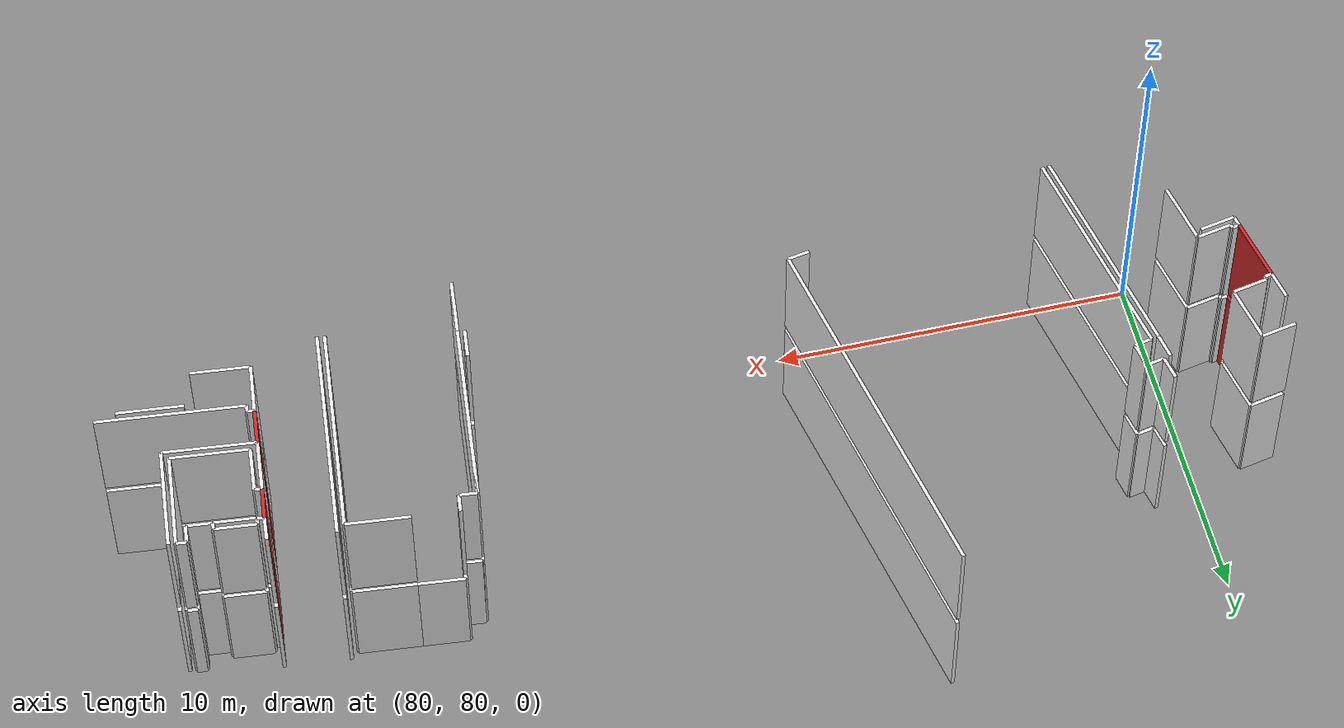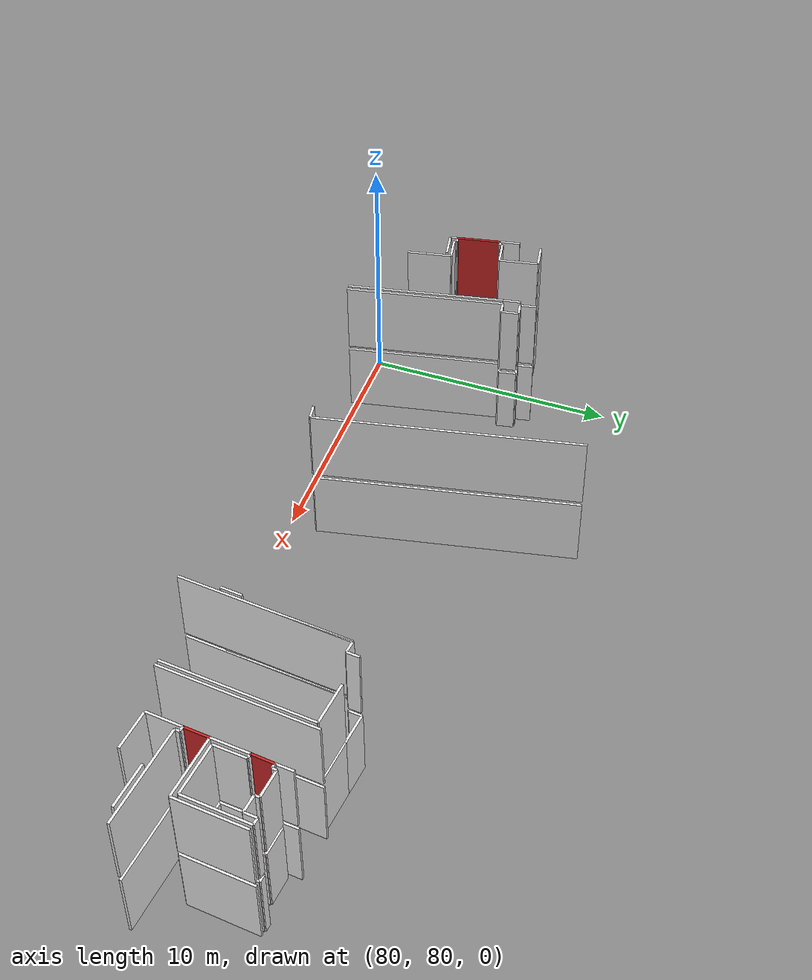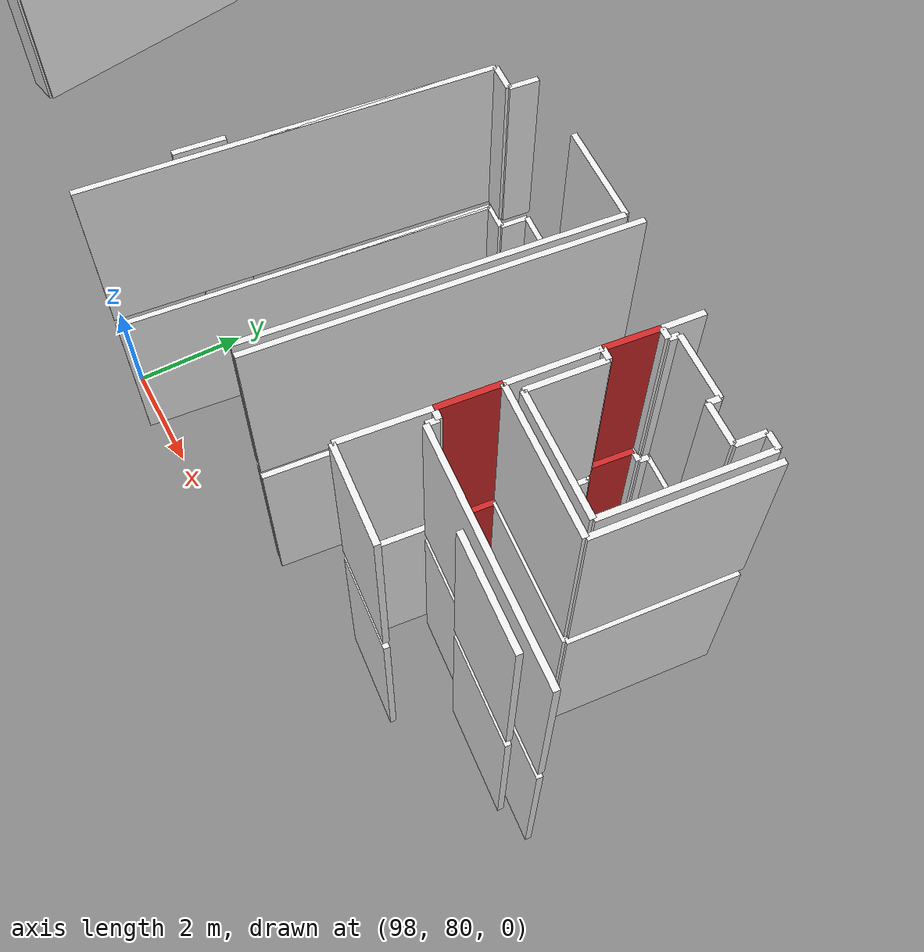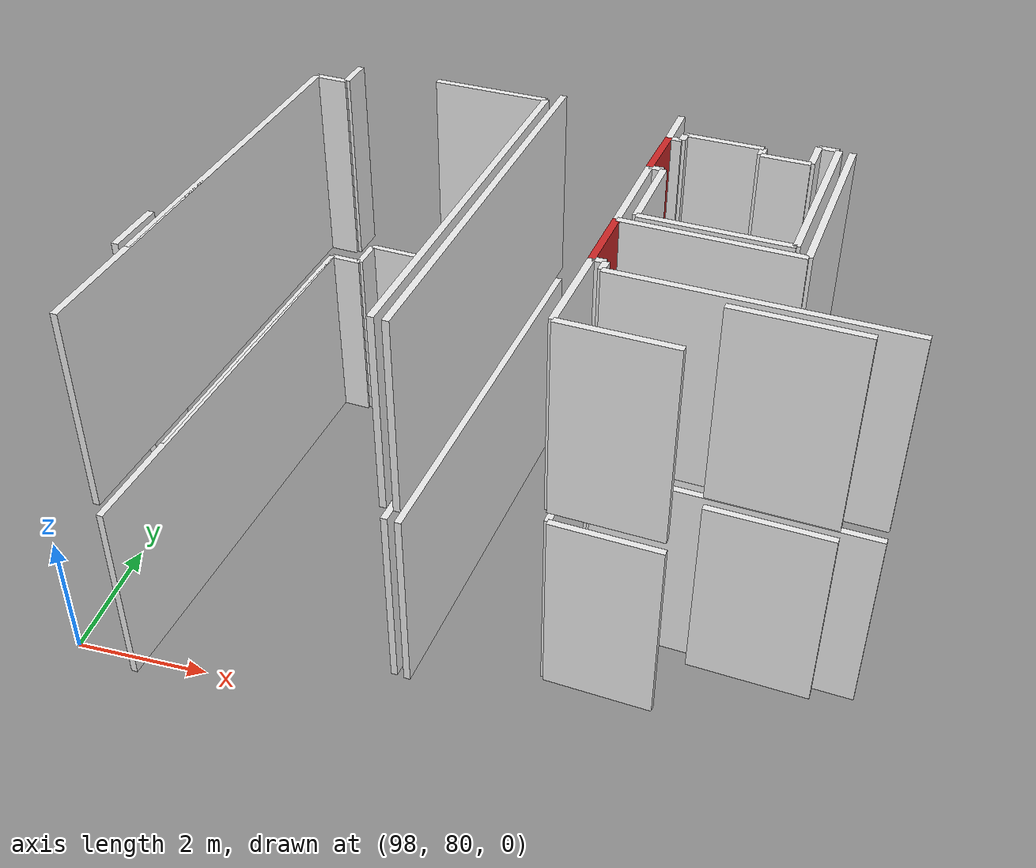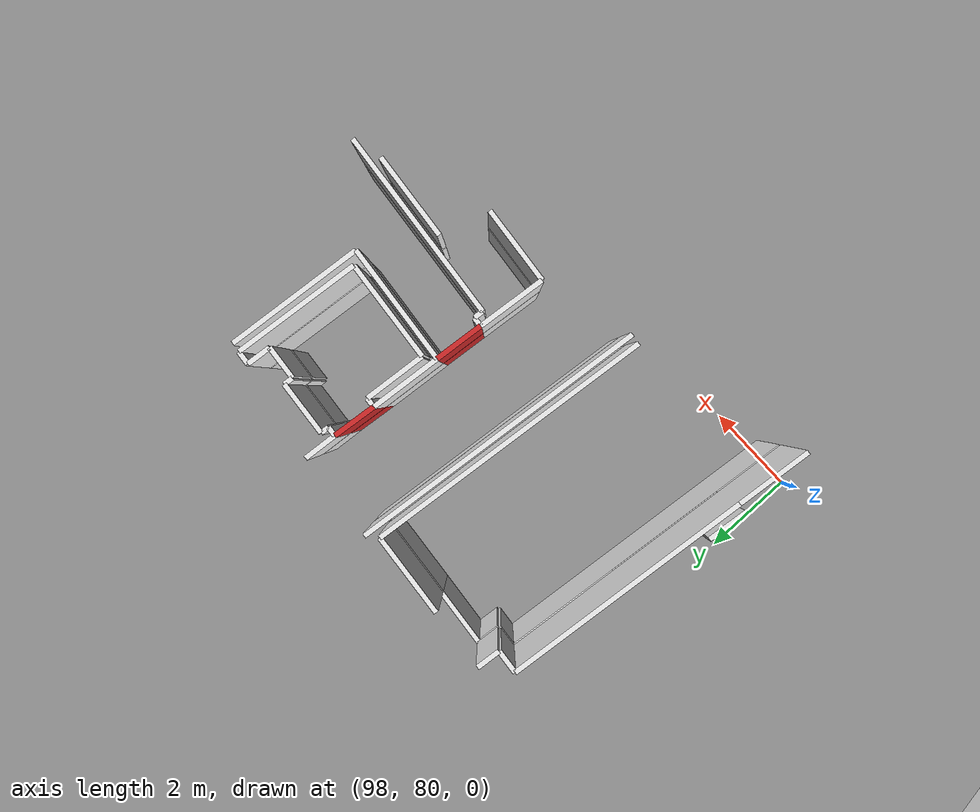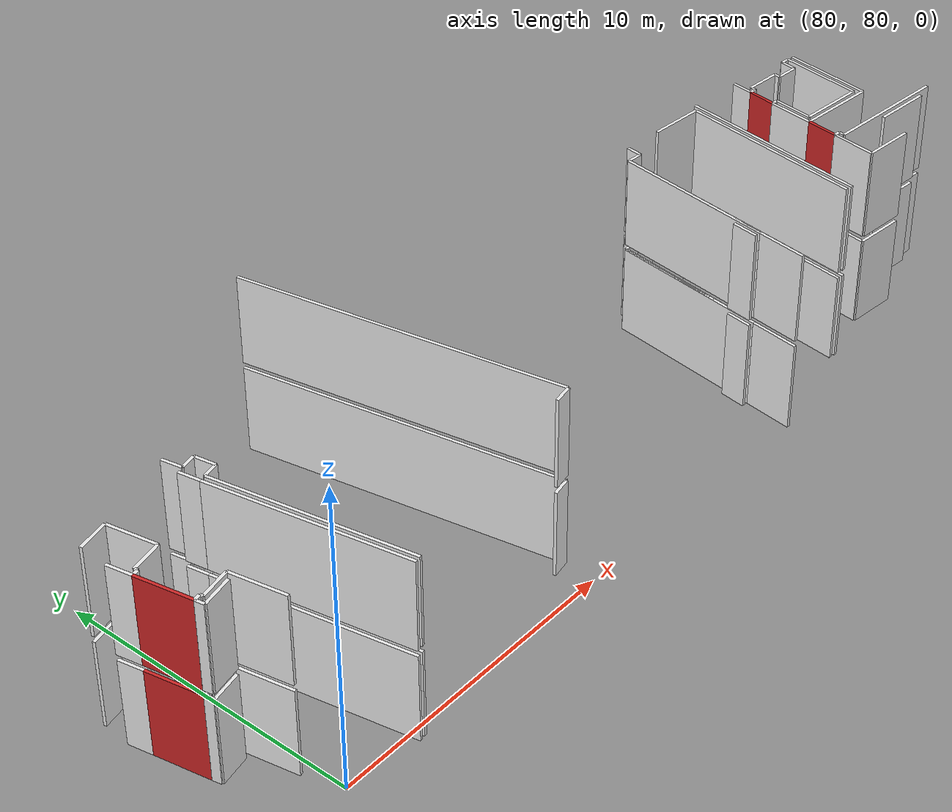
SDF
<sdf version="1.6">
 <world name="default">
  <model name="wall_104.9_83.1_0.0">
   <static>true</static>
   <pose>104.86999999999534 83.12999999988824 1.5 0 0 1.4711276743267871</pose>
   <link name="link">
    <visual name="visual">
     <geometry><box><size>1.0049875621097721 0.1 3</size></box></geometry>
     <material>
      <script><uri>file://media/materials/scripts/gazebo.material</uri><name>Gazebo/Red</name></script>
     </material>
    </visual>
   </link>
  </model>
  <model name="wall_105.1_85.5_0.0">
   <static>true</static>
   <pose>105.10999999998603 85.53499999991618 1.5 0 0 1.4589060606653106</pose>
   <link name="link">
    <visual name="visual">
     <geometry><box><size>0.895600357429266 0.1 3</size></box></geometry>
     <material>
      <script><uri>file://media/materials/scripts/gazebo.material</uri><name>Gazebo/Red</name></script>
     </material>
    </visual>
   </link>
  </model>
  <model name="wall_77.9_83.7_0.0">
   <static>true</static>
   <pose>77.88500000000931 83.6699999999255 1.5 0 0 -1.3744936626731843</pose>
   <link name="link">
    <visual name="visual">
     <geometry><box><size>1.7944637079631676 0.1 3</size></box></geometry>
     <material>
      <script><uri>file://media/materials/scripts/gazebo.material</uri><name>Gazebo/Red</name></script>
     </material>
    </visual>
   </link>
  </model>
  <model name="wall_107.5_82.0_0.0">
   <static>true</static>
   <pose>107.46499999999651 81.95999999996275 1.5 0 0 3.04137090397356</pose>
   <link name="link">
    <visual name="visual">
     <geometry><box><size>1.7990275150251853 0.1 3</size></box></geometry>
     <material>
      <script><uri>file://media/materials/scripts/gazebo.material</uri><name>Gazebo/White</name></script>
     </material>
    </visual>
   </link>
  </model>
  <model name="wall_107.0_82.2_0.0">
   <static>true</static>
   <pose>106.97500000000582 82.21999999997206 1.5 0 0 3.04117587158638</pose>
   <link name="link">
    <visual name="visual">
     <geometry><box><size>3.990100249387955 0.1 3</size></box></geometry>
     <material>
      <script><uri>file://media/materials/scripts/gazebo.material</uri><name>Gazebo/White</name></script>
     </material>
    </visual>
   </link>
  </model>
  <model name="wall_105.0_82.5_0.0">
   <static>true</static>
   <pose>105.0 82.51499999989755 1.5 0 0 1.4659193879370842</pose>
   <link name="link">
    <visual name="visual">
     <geometry><box><size>0.19104973169180559 0.1 3</size></box></geometry>
     <material>
      <script><uri>file://media/materials/scripts/gazebo.material</uri><name>Gazebo/White</name></script>
     </material>
    </visual>
   </link>
  </model>
  <model name="wall_104.9_82.6_0.0">
   <static>true</static>
   <pose>104.91500000000815 82.61999999987893 1.5 0 0 3.0367157147638757</pose>
   <link name="link">
    <visual name="visual">
     <geometry><box><size>0.19104973174969345 0.1 3</size></box></geometry>
     <material>
      <script><uri>file://media/materials/scripts/gazebo.material</uri><name>Gazebo/White</name></script>
     </material>
    </visual>
   </link>
  </model>
  <model name="wall_106.2_83.5_0.0">
   <static>true</static>
   <pose>106.16499999997905 83.5 1.5 0 0 -0.1040406436245778</pose>
   <link name="link">
    <visual name="visual">
     <geometry><box><size>2.5035374971902042 0.1 3</size></box></geometry>
     <material>
      <script><uri>file://media/materials/scripts/gazebo.material</uri><name>Gazebo/White</name></script>
     </material>
    </visual>
   </link>
  </model>
  <model name="wall_107.5_84.8_0.0">
   <static>true</static>
   <pose>107.54999999998836 84.79000000003725 1.5 0 0 1.4725223735240212</pose>
   <link name="link">
    <visual name="visual">
     <geometry><box><size>2.853769436932364 0.1 3</size></box></geometry>
     <material>
      <script><uri>file://media/materials/scripts/gazebo.material</uri><name>Gazebo/White</name></script>
     </material>
    </visual>
   </link>
  </model>
  <model name="wall_105.3_86.0_0.0">
   <static>true</static>
   <pose>105.25499999997555 85.96999999997206 1.5 0 0 -0.10487693882591773</pose>
   <link name="link">
    <visual name="visual">
     <geometry><box><size>0.19104973174969345 0.1 3</size></box></geometry>
     <material>
      <script><uri>file://media/materials/scripts/gazebo.material</uri><name>Gazebo/White</name></script>
     </material>
    </visual>
   </link>
  </model>
  <model name="wall_105.4_86.0_0.0">
   <static>true</static>
   <pose>105.35999999998603 86.0449999999255 1.5 0 0 1.4536875820691035</pose>
   <link name="link">
    <visual name="visual">
     <geometry><box><size>0.17117242761441775 0.1 3</size></box></geometry>
     <material>
      <script><uri>file://media/materials/scripts/gazebo.material</uri><name>Gazebo/White</name></script>
     </material>
    </visual>
   </link>
  </model>
  <model name="wall_105.9_86.1_0.0">
   <static>true</static>
   <pose>105.92999999999302 86.07499999995343 1.5 0 0 -0.097900307623563</pose>
   <link name="link">
    <visual name="visual">
     <geometry><box><size>1.1253888216793715 0.1 3</size></box></geometry>
     <material>
      <script><uri>file://media/materials/scripts/gazebo.material</uri><name>Gazebo/White</name></script>
     </material>
    </visual>
   </link>
  </model>
  <model name="wall_106.5_85.9_0.0">
   <static>true</static>
   <pose>106.47999999998137 85.92500000004657 1.5 0 0 -1.675673265652709</pose>
   <link name="link">
    <visual name="visual">
     <geometry><box><size>0.19104973169180559 0.1 3</size></box></geometry>
     <material>
      <script><uri>file://media/materials/scripts/gazebo.material</uri><name>Gazebo/White</name></script>
     </material>
    </visual>
   </link>
  </model>
  <model name="wall_106.8_85.8_0.0">
   <static>true</static>
   <pose>106.81999999997788 85.7949999999255 1.5 0 0 -0.09966865291104755</pose>
   <link name="link">
    <visual name="visual">
     <geometry><box><size>0.7034912935197005 0.1 3</size></box></geometry>
     <material>
      <script><uri>file://media/materials/scripts/gazebo.material</uri><name>Gazebo/White</name></script>
     </material>
    </visual>
   </link>
  </model>
  <model name="wall_107.2_86.0_0.0">
   <static>true</static>
   <pose>107.19499999997788 86.00999999977648 1.5 0 0 1.4711276743267871</pose>
   <link name="link">
    <visual name="visual">
     <geometry><box><size>0.5024937810548861 0.1 3</size></box></geometry>
     <material>
      <script><uri>file://media/materials/scripts/gazebo.material</uri><name>Gazebo/White</name></script>
     </material>
    </visual>
   </link>
  </model>
  <model name="wall_107.4_86.2_0.0">
   <static>true</static>
   <pose>107.35999999998603 86.24499999987893 1.5 0 0 -0.10673567191511722</pose>
   <link name="link">
    <visual name="visual">
     <geometry><box><size>0.28160255681252744 0.1 3</size></box></geometry>
     <material>
      <script><uri>file://media/materials/scripts/gazebo.material</uri><name>Gazebo/White</name></script>
     </material>
    </visual>
   </link>
  </model>
  <model name="wall_107.4_84.9_0.0">
   <static>true</static>
   <pose>107.36499999999069 84.90999999991618 1.5 0 0 -1.6727146942777542</pose>
   <link name="link">
    <visual name="visual">
     <geometry><box><size>2.6537709020747235 0.1 3</size></box></geometry>
     <material>
      <script><uri>file://media/materials/scripts/gazebo.material</uri><name>Gazebo/White</name></script>
     </material>
    </visual>
   </link>
  </model>
  <model name="wall_106.2_83.7_0.0">
   <static>true</static>
   <pose>106.18499999999767 83.69499999983236 1.5 0 0 3.041450292007573</pose>
   <link name="link">
    <visual name="visual">
     <geometry><box><size>2.1005237441762237 0.1 3</size></box></geometry>
     <material>
      <script><uri>file://media/materials/scripts/gazebo.material</uri><name>Gazebo/White</name></script>
     </material>
    </visual>
   </link>
  </model>
  <model name="wall_105.2_84.4_0.0">
   <static>true</static>
   <pose>105.20000000001164 84.43499999982305 1.5 0 0 1.4765878384548259</pose>
   <link name="link">
    <visual name="visual">
     <geometry><box><size>1.2756566936469207 0.1 3</size></box></geometry>
     <material>
      <script><uri>file://media/materials/scripts/gazebo.material</uri><name>Gazebo/White</name></script>
     </material>
    </visual>
   </link>
  </model>
  <model name="wall_105.2_85.1_0.0">
   <static>true</static>
   <pose>105.16000000000349 85.07999999984168 1.5 0 0 3.0419240010121844</pose>
   <link name="link">
    <visual name="visual">
     <geometry><box><size>0.20099751243585498 0.1 3</size></box></geometry>
     <material>
      <script><uri>file://media/materials/scripts/gazebo.material</uri><name>Gazebo/White</name></script>
     </material>
    </visual>
   </link>
  </model>
  <model name="wall_102.9_83.7_0.0">
   <static>true</static>
   <pose>102.90499999999884 83.67500000004657 1.5 0 0 1.4686322544173183</pose>
   <link name="link">
    <visual name="visual">
     <geometry><box><size>5.98118717285533 0.1 3</size></box></geometry>
     <material>
      <script><uri>file://media/materials/scripts/gazebo.material</uri><name>Gazebo/White</name></script>
     </material>
    </visual>
   </link>
  </model>
  <model name="wall_102.4_86.7_0.0">
   <static>true</static>
   <pose>102.35000000000582 86.73499999986961 1.5 0 0 3.0430754111122615</pose>
   <link name="link">
    <visual name="visual">
     <geometry><box><size>1.728380745113411 0.1 3</size></box></geometry>
     <material>
      <script><uri>file://media/materials/scripts/gazebo.material</uri><name>Gazebo/White</name></script>
     </material>
    </visual>
   </link>
  </model>
  <model name="wall_100.9_86.9_0.0">
   <static>true</static>
   <pose>100.85999999998603 86.88500000000931 1.5 0 0 3.038781827344916</pose>
   <link name="link">
    <visual name="visual">
     <geometry><box><size>1.2666885963469807 0.1 3</size></box></geometry>
     <material>
      <script><uri>file://media/materials/scripts/gazebo.material</uri><name>Gazebo/White</name></script>
     </material>
    </visual>
   </link>
  </model>
  <model name="wall_100.2_86.7_0.0">
   <static>true</static>
   <pose>100.2049999999872 86.70000000018626 1.5 0 0 -1.6704649792630062</pose>
   <link name="link">
    <visual name="visual">
     <geometry><box><size>0.5024937810548861 0.1 3</size></box></geometry>
     <material>
      <script><uri>file://media/materials/scripts/gazebo.material</uri><name>Gazebo/White</name></script>
     </material>
    </visual>
   </link>
  </model>
  <model name="wall_99.9_86.5_0.0">
   <static>true</static>
   <pose>99.93499999999767 86.47500000009313 1.5 0 0 3.039903802201011</pose>
   <link name="link">
    <visual name="visual">
     <geometry><box><size>0.49254441421281653 0.1 3</size></box></geometry>
     <material>
      <script><uri>file://media/materials/scripts/gazebo.material</uri><name>Gazebo/White</name></script>
     </material>
    </visual>
   </link>
  </model>
  <model name="wall_99.4_83.9_0.0">
   <static>true</static>
   <pose>99.42499999998836 83.9199999999255 1.5 0 0 -1.6731505665400097</pose>
   <link name="link">
    <visual name="visual">
     <geometry><box><size>5.187147578541352 0.1 3</size></box></geometry>
     <material>
      <script><uri>file://media/materials/scripts/gazebo.material</uri><name>Gazebo/White</name></script>
     </material>
    </visual>
   </link>
  </model>
  <model name="wall_103.1_83.8_0.0">
   <static>true</static>
   <pose>103.11499999999069 83.75499999988824 1.5 0 0 1.4690420042953642</pose>
   <link name="link">
    <visual name="visual">
     <geometry><box><size>6.202080296085054 0.1 3</size></box></geometry>
     <material>
      <script><uri>file://media/materials/scripts/gazebo.material</uri><name>Gazebo/White</name></script>
     </material>
    </visual>
   </link>
  </model>
  <model name="wall_105.2_86.3_0.0">
   <static>true</static>
   <pose>105.18999999997322 86.32000000006519 1.5 0 0 -1.6588037002976554</pose>
   <link name="link">
    <visual name="visual">
     <geometry><box><size>0.6826419268018251 0.1 3</size></box></geometry>
     <material>
      <script><uri>file://media/materials/scripts/gazebo.material</uri><name>Gazebo/White</name></script>
     </material>
    </visual>
   </link>
  </model>
  <model name="wall_105.0_84.4_0.0">
   <static>true</static>
   <pose>104.98999999999069 84.35999999986961 1.5 0 0 -1.6663944454706425</pose>
   <link name="link">
    <visual name="visual">
     <geometry><box><size>1.466696969348179 0.1 3</size></box></geometry>
     <material>
      <script><uri>file://media/materials/scripts/gazebo.material</uri><name>Gazebo/White</name></script>
     </material>
    </visual>
   </link>
  </model>
  <model name="wall_104.7_81.9_0.0">
   <static>true</static>
   <pose>104.74499999999534 81.92500000004657 1.5 0 0 -1.676780684824448</pose>
   <link name="link">
    <visual name="visual">
     <geometry><box><size>1.417956275459167 0.1 3</size></box></geometry>
     <material>
      <script><uri>file://media/materials/scripts/gazebo.material</uri><name>Gazebo/White</name></script>
     </material>
    </visual>
   </link>
  </model>
  <model name="wall_105.5_81.1_0.0">
   <static>true</static>
   <pose>105.47000000000116 81.14000000013039 1.5 0 0 -0.099668652581211</pose>
   <link name="link">
    <visual name="visual">
     <geometry><box><size>1.607980099428921 0.1 3</size></box></geometry>
     <material>
      <script><uri>file://media/materials/scripts/gazebo.material</uri><name>Gazebo/White</name></script>
     </material>
    </visual>
   </link>
  </model>
  <model name="wall_77.6_84.9_0.0">
   <static>true</static>
   <pose>77.63000000000466 84.94499999983236 1.5 0 0 1.770624971898348</pose>
   <link name="link">
    <visual name="visual">
     <geometry><box><size>0.8060397012984475 0.1 3</size></box></geometry>
     <material>
      <script><uri>file://media/materials/scripts/gazebo.material</uri><name>Gazebo/White</name></script>
     </material>
    </visual>
   </link>
  </model>
  <model name="wall_78.6_82.6_0.0">
   <static>true</static>
   <pose>78.60999999998603 82.59499999997206 1.5 0 0 -2.950090935171577</pose>
   <link name="link">
    <visual name="visual">
     <geometry><box><size>0.9982484660355146 0.1 3</size></box></geometry>
     <material>
      <script><uri>file://media/materials/scripts/gazebo.material</uri><name>Gazebo/White</name></script>
     </material>
    </visual>
   </link>
  </model>
  <model name="wall_78.1_82.6_0.0">
   <static>true</static>
   <pose>78.08999999999651 82.64500000001863 1.5 0 0 1.7748143063542596</pose>
   <link name="link">
    <visual name="visual">
     <geometry><box><size>0.2961418579352255 0.1 3</size></box></geometry>
     <material>
      <script><uri>file://media/materials/scripts/gazebo.material</uri><name>Gazebo/White</name></script>
     </material>
    </visual>
   </link>
  </model>
  <model name="wall_79.4_82.1_0.0">
   <static>true</static>
   <pose>79.43499999999767 82.05000000004657 1.5 0 0 1.7692968585848012</pose>
   <link name="link">
    <visual name="visual">
     <geometry><box><size>1.7748521062728133 0.1 3</size></box></geometry>
     <material>
      <script><uri>file://media/materials/scripts/gazebo.material</uri><name>Gazebo/White</name></script>
     </material>
    </visual>
   </link>
  </model>
  <model name="wall_78.8_82.8_0.0">
   <static>true</static>
   <pose>78.77000000001863 82.82499999995343 1.5 0 0 -2.950090935171577</pose>
   <link name="link">
    <visual name="visual">
     <geometry><box><size>0.9982484660355146 0.1 3</size></box></geometry>
     <material>
      <script><uri>file://media/materials/scripts/gazebo.material</uri><name>Gazebo/White</name></script>
     </material>
    </visual>
   </link>
  </model>
  <model name="wall_78.3_82.8_0.0">
   <static>true</static>
   <pose>78.27000000001863 82.78000000002794 1.5 0 0 1.7681918866447774</pose>
   <link name="link">
    <visual name="visual">
     <geometry><box><size>0.10198039036683233 0.1 3</size></box></geometry>
     <material>
      <script><uri>file://media/materials/scripts/gazebo.material</uri><name>Gazebo/White</name></script>
     </material>
    </visual>
   </link>
  </model>
  <model name="wall_78.2_82.8_0.0">
   <static>true</static>
   <pose>78.16000000000349 82.81000000005588 1.5 0 0 -2.9441970935720057</pose>
   <link name="link">
    <visual name="visual">
     <geometry><box><size>0.20396078056243275 0.1 3</size></box></geometry>
     <material>
      <script><uri>file://media/materials/scripts/gazebo.material</uri><name>Gazebo/White</name></script>
     </material>
    </visual>
   </link>
  </model>
  <model name="wall_77.8_84.6_0.0">
   <static>true</static>
   <pose>77.80999999999767 84.56999999983236 1.5 0 0 0.1973955600737564</pose>
   <link name="link">
    <visual name="visual">
     <geometry><box><size>0.20396078050535543 0.1 3</size></box></geometry>
     <material>
      <script><uri>file://media/materials/scripts/gazebo.material</uri><name>Gazebo/White</name></script>
     </material>
    </visual>
   </link>
  </model>
  <model name="wall_77.9_84.6_0.0">
   <static>true</static>
   <pose>77.89999999999418 84.63999999989755 1.5 0 0 1.7681918860850883</pose>
   <link name="link">
    <visual name="visual">
     <geometry><box><size>0.10198039035541688 0.1 3</size></box></geometry>
     <material>
      <script><uri>file://media/materials/scripts/gazebo.material</uri><name>Gazebo/White</name></script>
     </material>
    </visual>
   </link>
  </model>
  <model name="wall_78.4_84.8_0.0">
   <static>true</static>
   <pose>78.38000000000466 84.78499999991618 1.5 0 0 0.19150171841821614</pose>
   <link name="link">
    <visual name="visual">
     <geometry><box><size>0.9982484660355146 0.1 3</size></box></geometry>
     <material>
      <script><uri>file://media/materials/scripts/gazebo.material</uri><name>Gazebo/White</name></script>
     </material>
    </visual>
   </link>
  </model>
  <model name="wall_78.7_85.7_0.0">
   <static>true</static>
   <pose>78.71499999999651 85.65999999991618 1.5 0 0 1.7669588416387134</pose>
   <link name="link">
    <visual name="visual">
     <geometry><box><size>1.5905030651252767 0.1 3</size></box></geometry>
     <material>
      <script><uri>file://media/materials/scripts/gazebo.material</uri><name>Gazebo/White</name></script>
     </material>
    </visual>
   </link>
  </model>
  <model name="wall_78.1_86.3_0.0">
   <static>true</static>
   <pose>78.07000000000698 86.34499999997206 1.5 0 0 -2.950090935171577</pose>
   <link name="link">
    <visual name="visual">
     <geometry><box><size>0.9982484660355146 0.1 3</size></box></geometry>
     <material>
      <script><uri>file://media/materials/scripts/gazebo.material</uri><name>Gazebo/White</name></script>
     </material>
    </visual>
   </link>
  </model>
  <model name="wall_81.2_86.2_0.0">
   <static>true</static>
   <pose>81.16499999997905 86.1500000001397 1.5 0 0 -1.3818991459561358</pose>
   <link name="link">
    <visual name="visual">
     <geometry><box><size>0.6923149573923696 0.1 3</size></box></geometry>
     <material>
      <script><uri>file://media/materials/scripts/gazebo.material</uri><name>Gazebo/White</name></script>
     </material>
    </visual>
   </link>
  </model>
  <model name="wall_81.8_82.7_0.0">
   <static>true</static>
   <pose>81.84999999997672 82.72999999998137 1.5 0 0 -1.3721523281490677</pose>
   <link name="link">
    <visual name="visual">
     <geometry><box><size>6.283565866752152 0.1 3</size></box></geometry>
     <material>
      <script><uri>file://media/materials/scripts/gazebo.material</uri><name>Gazebo/White</name></script>
     </material>
    </visual>
   </link>
  </model>
  <model name="wall_99.0_81.8_0.0">
   <static>true</static>
   <pose>99.01499999998487 81.78000000002794 1.5 0 0 -1.6775319994342452</pose>
   <link name="link">
    <visual name="visual">
     <geometry><box><size>0.8448076707372996 0.1 3</size></box></geometry>
     <material>
      <script><uri>file://media/materials/scripts/gazebo.material</uri><name>Gazebo/White</name></script>
     </material>
    </visual>
   </link>
  </model>
  <model name="wall_89.1_86.2_0.0">
   <static>true</static>
   <pose>89.07499999998254 86.17500000004657 1.5 0 0 1.7693239616328174</pose>
   <link name="link">
    <visual name="visual">
     <geometry><box><size>10.394161822812528 0.1 3</size></box></geometry>
     <material>
      <script><uri>file://media/materials/scripts/gazebo.material</uri><name>Gazebo/White</name></script>
     </material>
    </visual>
   </link>
  </model>
  <model name="wall_81.2_86.8_0.0">
   <static>true</static>
   <pose>81.23499999998603 86.8499999998603 1.5 0 0 -1.3703977730017727</pose>
   <link name="link">
    <visual name="visual">
     <geometry><box><size>0.6530696748189306 0.1 3</size></box></geometry>
     <material>
      <script><uri>file://media/materials/scripts/gazebo.material</uri><name>Gazebo/White</name></script>
     </material>
    </visual>
   </link>
  </model>
  <model name="wall_81.5_86.6_0.0">
   <static>true</static>
   <pose>81.5449999999837 86.57999999984168 1.5 0 0 0.2013171085608308</pose>
   <link name="link">
    <visual name="visual">
     <geometry><box><size>0.5000999900114971 0.1 3</size></box></geometry>
     <material>
      <script><uri>file://media/materials/scripts/gazebo.material</uri><name>Gazebo/White</name></script>
     </material>
    </visual>
   </link>
  </model>
  <model name="wall_81.9_86.3_0.0">
   <static>true</static>
   <pose>81.85499999998137 86.29000000003725 1.5 0 0 -1.3818991458298349</pose>
   <link name="link">
    <visual name="visual">
     <geometry><box><size>0.6923149569349915 0.1 3</size></box></geometry>
     <material>
      <script><uri>file://media/materials/scripts/gazebo.material</uri><name>Gazebo/White</name></script>
     </material>
    </visual>
   </link>
  </model>
  <model name="wall_81.7_85.9_0.0">
   <static>true</static>
   <pose>81.67499999998836 85.9000000001397 1.5 0 0 -2.9402755450289626</pose>
   <link name="link">
    <visual name="visual">
     <geometry><box><size>0.5000999900114971 0.1 3</size></box></geometry>
     <material>
      <script><uri>file://media/materials/scripts/gazebo.material</uri><name>Gazebo/White</name></script>
     </material>
    </visual>
   </link>
  </model>
  <model name="wall_82.0_82.8_0.0">
   <static>true</static>
   <pose>82.0449999999837 82.76500000013039 1.5 0 0 -1.3740242082613399</pose>
   <link name="link">
    <visual name="visual">
     <geometry><box><size>6.291406837825287 0.1 3</size></box></geometry>
     <material>
      <script><uri>file://media/materials/scripts/gazebo.material</uri><name>Gazebo/White</name></script>
     </material>
    </visual>
   </link>
  </model>
  <model name="wall_89.8_81.0_0.0">
   <static>true</static>
   <pose>89.79999999998836 81.0250000001397 1.5 0 0 0.18131977419813103</pose>
   <link name="link">
    <visual name="visual">
     <geometry><box><size>0.6099999999535866 0.1 3</size></box></geometry>
     <material>
      <script><uri>file://media/materials/scripts/gazebo.material</uri><name>Gazebo/White</name></script>
     </material>
    </visual>
   </link>
  </model>
  <model name="wall_99.3_83.1_0.0">
   <static>true</static>
   <pose>99.34500000000116 83.12999999988824 1.5 0 0 1.4687778475258746</pose>
   <link name="link">
    <visual name="visual">
     <geometry><box><size>6.775226933691315 0.1 3</size></box></geometry>
     <material>
      <script><uri>file://media/materials/scripts/gazebo.material</uri><name>Gazebo/White</name></script>
     </material>
    </visual>
   </link>
  </model>
  <model name="wall_104.9_83.1_3.2">
   <static>true</static>
   <pose>104.86999999999534 83.12999999988824 4.7 0 0 1.4711276743267871</pose>
   <link name="link">
    <visual name="visual">
     <geometry><box><size>1.0049875621097721 0.1 3</size></box></geometry>
     <material>
      <script><uri>file://media/materials/scripts/gazebo.material</uri><name>Gazebo/Red</name></script>
     </material>
    </visual>
   </link>
  </model>
  <model name="wall_105.1_85.5_3.2">
   <static>true</static>
   <pose>105.10999999998603 85.53499999991618 4.7 0 0 1.4589060606653106</pose>
   <link name="link">
    <visual name="visual">
     <geometry><box><size>0.895600357429266 0.1 3</size></box></geometry>
     <material>
      <script><uri>file://media/materials/scripts/gazebo.material</uri><name>Gazebo/Red</name></script>
     </material>
    </visual>
   </link>
  </model>
  <model name="wall_77.9_83.7_3.2">
   <static>true</static>
   <pose>77.88500000000931 83.6699999999255 4.7 0 0 -1.3744936626731843</pose>
   <link name="link">
    <visual name="visual">
     <geometry><box><size>1.7944637079631676 0.1 3</size></box></geometry>
     <material>
      <script><uri>file://media/materials/scripts/gazebo.material</uri><name>Gazebo/Red</name></script>
     </material>
    </visual>
   </link>
  </model>
  <model name="wall_107.5_82.0_3.2">
   <static>true</static>
   <pose>107.46499999999651 81.95999999996275 4.7 0 0 3.04137090397356</pose>
   <link name="link">
    <visual name="visual">
     <geometry><box><size>1.7990275150251853 0.1 3</size></box></geometry>
     <material>
      <script><uri>file://media/materials/scripts/gazebo.material</uri><name>Gazebo/White</name></script>
     </material>
    </visual>
   </link>
  </model>
  <model name="wall_107.0_82.2_3.2">
   <static>true</static>
   <pose>106.97500000000582 82.21999999997206 4.7 0 0 3.04117587158638</pose>
   <link name="link">
    <visual name="visual">
     <geometry><box><size>3.990100249387955 0.1 3</size></box></geometry>
     <material>
      <script><uri>file://media/materials/scripts/gazebo.material</uri><name>Gazebo/White</name></script>
     </material>
    </visual>
   </link>
  </model>
  <model name="wall_105.0_82.5_3.2">
   <static>true</static>
   <pose>105.0 82.51499999989755 4.7 0 0 1.4659193879370842</pose>
   <link name="link">
    <visual name="visual">
     <geometry><box><size>0.19104973169180559 0.1 3</size></box></geometry>
     <material>
      <script><uri>file://media/materials/scripts/gazebo.material</uri><name>Gazebo/White</name></script>
     </material>
    </visual>
   </link>
  </model>
  <model name="wall_104.9_82.6_3.2">
   <static>true</static>
   <pose>104.91500000000815 82.61999999987893 4.7 0 0 3.0367157147638757</pose>
   <link name="link">
    <visual name="visual">
     <geometry><box><size>0.19104973174969345 0.1 3</size></box></geometry>
     <material>
      <script><uri>file://media/materials/scripts/gazebo.material</uri><name>Gazebo/White</name></script>
     </material>
    </visual>
   </link>
  </model>
  <model name="wall_106.2_83.5_3.2">
   <static>true</static>
   <pose>106.16499999997905 83.5 4.7 0 0 -0.1040406436245778</pose>
   <link name="link">
    <visual name="visual">
     <geometry><box><size>2.5035374971902042 0.1 3</size></box></geometry>
     <material>
      <script><uri>file://media/materials/scripts/gazebo.material</uri><name>Gazebo/White</name></script>
     </material>
    </visual>
   </link>
  </model>
  <model name="wall_107.5_84.8_3.2">
   <static>true</static>
   <pose>107.54999999998836 84.79000000003725 4.7 0 0 1.4725223735240212</pose>
   <link name="link">
    <visual name="visual">
     <geometry><box><size>2.853769436932364 0.1 3</size></box></geometry>
     <material>
      <script><uri>file://media/materials/scripts/gazebo.material</uri><name>Gazebo/White</name></script>
     </material>
    </visual>
   </link>
  </model>
  <model name="wall_105.3_86.0_3.2">
   <static>true</static>
   <pose>105.25499999997555 85.96999999997206 4.7 0 0 -0.10487693882591773</pose>
   <link name="link">
    <visual name="visual">
     <geometry><box><size>0.19104973174969345 0.1 3</size></box></geometry>
     <material>
      <script><uri>file://media/materials/scripts/gazebo.material</uri><name>Gazebo/White</name></script>
     </material>
    </visual>
   </link>
  </model>
  <model name="wall_105.4_86.0_3.2">
   <static>true</static>
   <pose>105.35999999998603 86.0449999999255 4.7 0 0 1.4536875820691035</pose>
   <link name="link">
    <visual name="visual">
     <geometry><box><size>0.17117242761441775 0.1 3</size></box></geometry>
     <material>
      <script><uri>file://media/materials/scripts/gazebo.material</uri><name>Gazebo/White</name></script>
     </material>
    </visual>
   </link>
  </model>
  <model name="wall_105.9_86.1_3.2">
   <static>true</static>
   <pose>105.92999999999302 86.07499999995343 4.7 0 0 -0.097900307623563</pose>
   <link name="link">
    <visual name="visual">
     <geometry><box><size>1.1253888216793715 0.1 3</size></box></geometry>
     <material>
      <script><uri>file://media/materials/scripts/gazebo.material</uri><name>Gazebo/White</name></script>
     </material>
    </visual>
   </link>
  </model>
  <model name="wall_106.5_85.9_3.2">
   <static>true</static>
   <pose>106.47999999998137 85.92500000004657 4.7 0 0 -1.675673265652709</pose>
   <link name="link">
    <visual name="visual">
     <geometry><box><size>0.19104973169180559 0.1 3</size></box></geometry>
     <material>
      <script><uri>file://media/materials/scripts/gazebo.material</uri><name>Gazebo/White</name></script>
     </material>
    </visual>
   </link>
  </model>
  <model name="wall_106.8_85.8_3.2">
   <static>true</static>
   <pose>106.81999999997788 85.7949999999255 4.7 0 0 -0.09966865291104755</pose>
   <link name="link">
    <visual name="visual">
     <geometry><box><size>0.7034912935197005 0.1 3</size></box></geometry>
     <material>
      <script><uri>file://media/materials/scripts/gazebo.material</uri><name>Gazebo/White</name></script>
     </material>
    </visual>
   </link>
  </model>
  <model name="wall_107.2_86.0_3.2">
   <static>true</static>
   <pose>107.19499999997788 86.00999999977648 4.7 0 0 1.4711276743267871</pose>
   <link name="link">
    <visual name="visual">
     <geometry><box><size>0.5024937810548861 0.1 3</size></box></geometry>
     <material>
      <script><uri>file://media/materials/scripts/gazebo.material</uri><name>Gazebo/White</name></script>
     </material>
    </visual>
   </link>
  </model>
  <model name="wall_107.4_86.2_3.2">
   <static>true</static>
   <pose>107.35999999998603 86.24499999987893 4.7 0 0 -0.10673567191511722</pose>
   <link name="link">
    <visual name="visual">
     <geometry><box><size>0.28160255681252744 0.1 3</size></box></geometry>
     <material>
      <script><uri>file://media/materials/scripts/gazebo.material</uri><name>Gazebo/White</name></script>
     </material>
    </visual>
   </link>
  </model>
  <model name="wall_107.4_84.9_3.2">
   <static>true</static>
   <pose>107.36499999999069 84.90999999991618 4.7 0 0 -1.6727146942777542</pose>
   <link name="link">
    <visual name="visual">
     <geometry><box><size>2.6537709020747235 0.1 3</size></box></geometry>
     <material>
      <script><uri>file://media/materials/scripts/gazebo.material</uri><name>Gazebo/White</name></script>
     </material>
    </visual>
   </link>
  </model>
  <model name="wall_106.2_83.7_3.2">
   <static>true</static>
   <pose>106.18499999999767 83.69499999983236 4.7 0 0 3.041450292007573</pose>
   <link name="link">
    <visual name="visual">
     <geometry><box><size>2.1005237441762237 0.1 3</size></box></geometry>
     <material>
      <script><uri>file://media/materials/scripts/gazebo.material</uri><name>Gazebo/White</name></script>
     </material>
    </visual>
   </link>
  </model>
  <model name="wall_105.2_84.4_3.2">
   <static>true</static>
   <pose>105.20000000001164 84.43499999982305 4.7 0 0 1.4765878384548259</pose>
   <link name="link">
    <visual name="visual">
     <geometry><box><size>1.2756566936469207 0.1 3</size></box></geometry>
     <material>
      <script><uri>file://media/materials/scripts/gazebo.material</uri><name>Gazebo/White</name></script>
     </material>
    </visual>
   </link>
  </model>
  <model name="wall_105.2_85.1_3.2">
   <static>true</static>
   <pose>105.16000000000349 85.07999999984168 4.7 0 0 3.0419240010121844</pose>
   <link name="link">
    <visual name="visual">
     <geometry><box><size>0.20099751243585498 0.1 3</size></box></geometry>
     <material>
      <script><uri>file://media/materials/scripts/gazebo.material</uri><name>Gazebo/White</name></script>
     </material>
    </visual>
   </link>
  </model>
  <model name="wall_102.9_83.7_3.2">
   <static>true</static>
   <pose>102.90499999999884 83.67500000004657 4.7 0 0 1.4686322544173183</pose>
   <link name="link">
    <visual name="visual">
     <geometry><box><size>5.98118717285533 0.1 3</size></box></geometry>
     <material>
      <script><uri>file://media/materials/scripts/gazebo.material</uri><name>Gazebo/White</name></script>
     </material>
    </visual>
   </link>
  </model>
  <model name="wall_102.4_86.7_3.2">
   <static>true</static>
   <pose>102.35000000000582 86.73499999986961 4.7 0 0 3.0430754111122615</pose>
   <link name="link">
    <visual name="visual">
     <geometry><box><size>1.728380745113411 0.1 3</size></box></geometry>
     <material>
      <script><uri>file://media/materials/scripts/gazebo.material</uri><name>Gazebo/White</name></script>
     </material>
    </visual>
   </link>
  </model>
  <model name="wall_100.2_86.7_3.2">
   <static>true</static>
   <pose>100.2049999999872 86.70000000018626 4.7 0 0 -1.6704649792630062</pose>
   <link name="link">
    <visual name="visual">
     <geometry><box><size>0.5024937810548861 0.1 3</size></box></geometry>
     <material>
      <script><uri>file://media/materials/scripts/gazebo.material</uri><name>Gazebo/White</name></script>
     </material>
    </visual>
   </link>
  </model>
  <model name="wall_99.9_86.5_3.2">
   <static>true</static>
   <pose>99.93499999999767 86.47500000009313 4.7 0 0 3.039903802201011</pose>
   <link name="link">
    <visual name="visual">
     <geometry><box><size>0.49254441421281653 0.1 3</size></box></geometry>
     <material>
      <script><uri>file://media/materials/scripts/gazebo.material</uri><name>Gazebo/White</name></script>
     </material>
    </visual>
   </link>
  </model>
  <model name="wall_99.4_83.9_3.2">
   <static>true</static>
   <pose>99.42499999998836 83.9199999999255 4.7 0 0 -1.6731505665400097</pose>
   <link name="link">
    <visual name="visual">
     <geometry><box><size>5.187147578541352 0.1 3</size></box></geometry>
     <material>
      <script><uri>file://media/materials/scripts/gazebo.material</uri><name>Gazebo/White</name></script>
     </material>
    </visual>
   </link>
  </model>
  <model name="wall_103.1_83.8_3.2">
   <static>true</static>
   <pose>103.11499999999069 83.75499999988824 4.7 0 0 1.4690420042953642</pose>
   <link name="link">
    <visual name="visual">
     <geometry><box><size>6.202080296085054 0.1 3</size></box></geometry>
     <material>
      <script><uri>file://media/materials/scripts/gazebo.material</uri><name>Gazebo/White</name></script>
     </material>
    </visual>
   </link>
  </model>
  <model name="wall_105.2_86.3_3.2">
   <static>true</static>
   <pose>105.18999999997322 86.32000000006519 4.7 0 0 -1.6588037002976554</pose>
   <link name="link">
    <visual name="visual">
     <geometry><box><size>0.6826419268018251 0.1 3</size></box></geometry>
     <material>
      <script><uri>file://media/materials/scripts/gazebo.material</uri><name>Gazebo/White</name></script>
     </material>
    </visual>
   </link>
  </model>
  <model name="wall_105.0_84.4_3.2">
   <static>true</static>
   <pose>104.98999999999069 84.35999999986961 4.7 0 0 -1.6663944454706425</pose>
   <link name="link">
    <visual name="visual">
     <geometry><box><size>1.466696969348179 0.1 3</size></box></geometry>
     <material>
      <script><uri>file://media/materials/scripts/gazebo.material</uri><name>Gazebo/White</name></script>
     </material>
    </visual>
   </link>
  </model>
  <model name="wall_104.7_81.9_3.2">
   <static>true</static>
   <pose>104.74499999999534 81.92500000004657 4.7 0 0 -1.676780684824448</pose>
   <link name="link">
    <visual name="visual">
     <geometry><box><size>1.417956275459167 0.1 3</size></box></geometry>
     <material>
      <script><uri>file://media/materials/scripts/gazebo.material</uri><name>Gazebo/White</name></script>
     </material>
    </visual>
   </link>
  </model>
  <model name="wall_105.5_81.1_3.2">
   <static>true</static>
   <pose>105.47000000000116 81.14000000013039 4.7 0 0 -0.099668652581211</pose>
   <link name="link">
    <visual name="visual">
     <geometry><box><size>1.607980099428921 0.1 3</size></box></geometry>
     <material>
      <script><uri>file://media/materials/scripts/gazebo.material</uri><name>Gazebo/White</name></script>
     </material>
    </visual>
   </link>
  </model>
  <model name="wall_77.6_84.9_3.2">
   <static>true</static>
   <pose>77.63000000000466 84.94499999983236 4.7 0 0 1.770624971898348</pose>
   <link name="link">
    <visual name="visual">
     <geometry><box><size>0.8060397012984475 0.1 3</size></box></geometry>
     <material>
      <script><uri>file://media/materials/scripts/gazebo.material</uri><name>Gazebo/White</name></script>
     </material>
    </visual>
   </link>
  </model>
  <model name="wall_78.6_82.6_3.2">
   <static>true</static>
   <pose>78.60999999998603 82.59499999997206 4.7 0 0 -2.950090935171577</pose>
   <link name="link">
    <visual name="visual">
     <geometry><box><size>0.9982484660355146 0.1 3</size></box></geometry>
     <material>
      <script><uri>file://media/materials/scripts/gazebo.material</uri><name>Gazebo/White</name></script>
     </material>
    </visual>
   </link>
  </model>
  <model name="wall_78.1_82.6_3.2">
   <static>true</static>
   <pose>78.08999999999651 82.64500000001863 4.7 0 0 1.7748143063542596</pose>
   <link name="link">
    <visual name="visual">
     <geometry><box><size>0.2961418579352255 0.1 3</size></box></geometry>
     <material>
      <script><uri>file://media/materials/scripts/gazebo.material</uri><name>Gazebo/White</name></script>
     </material>
    </visual>
   </link>
  </model>
  <model name="wall_79.4_82.1_3.2">
   <static>true</static>
   <pose>79.43499999999767 82.05000000004657 4.7 0 0 1.7692968585848012</pose>
   <link name="link">
    <visual name="visual">
     <geometry><box><size>1.7748521062728133 0.1 3</size></box></geometry>
     <material>
      <script><uri>file://media/materials/scripts/gazebo.material</uri><name>Gazebo/White</name></script>
     </material>
    </visual>
   </link>
  </model>
  <model name="wall_78.8_82.8_3.2">
   <static>true</static>
   <pose>78.77000000001863 82.82499999995343 4.7 0 0 -2.950090935171577</pose>
   <link name="link">
    <visual name="visual">
     <geometry><box><size>0.9982484660355146 0.1 3</size></box></geometry>
     <material>
      <script><uri>file://media/materials/scripts/gazebo.material</uri><name>Gazebo/White</name></script>
     </material>
    </visual>
   </link>
  </model>
  <model name="wall_78.3_82.8_3.2">
   <static>true</static>
   <pose>78.27000000001863 82.78000000002794 4.7 0 0 1.7681918866447774</pose>
   <link name="link">
    <visual name="visual">
     <geometry><box><size>0.10198039036683233 0.1 3</size></box></geometry>
     <material>
      <script><uri>file://media/materials/scripts/gazebo.material</uri><name>Gazebo/White</name></script>
     </material>
    </visual>
   </link>
  </model>
  <model name="wall_78.2_82.8_3.2">
   <static>true</static>
   <pose>78.16000000000349 82.81000000005588 4.7 0 0 -2.9441970935720057</pose>
   <link name="link">
    <visual name="visual">
     <geometry><box><size>0.20396078056243275 0.1 3</size></box></geometry>
     <material>
      <script><uri>file://media/materials/scripts/gazebo.material</uri><name>Gazebo/White</name></script>
     </material>
    </visual>
   </link>
  </model>
  <model name="wall_77.8_84.6_3.2">
   <static>true</static>
   <pose>77.80999999999767 84.56999999983236 4.7 0 0 0.1973955600737564</pose>
   <link name="link">
    <visual name="visual">
     <geometry><box><size>0.20396078050535543 0.1 3</size></box></geometry>
     <material>
      <script><uri>file://media/materials/scripts/gazebo.material</uri><name>Gazebo/White</name></script>
     </material>
    </visual>
   </link>
  </model>
  <model name="wall_77.9_84.6_3.2">
   <static>true</static>
   <pose>77.89999999999418 84.63999999989755 4.7 0 0 1.7681918860850883</pose>
   <link name="link">
    <visual name="visual">
     <geometry><box><size>0.10198039035541688 0.1 3</size></box></geometry>
     <material>
      <script><uri>file://media/materials/scripts/gazebo.material</uri><name>Gazebo/White</name></script>
     </material>
    </visual>
   </link>
  </model>
  <model name="wall_78.4_84.8_3.2">
   <static>true</static>
   <pose>78.38000000000466 84.78499999991618 4.7 0 0 0.19150171841821614</pose>
   <link name="link">
    <visual name="visual">
     <geometry><box><size>0.9982484660355146 0.1 3</size></box></geometry>
     <material>
      <script><uri>file://media/materials/scripts/gazebo.material</uri><name>Gazebo/White</name></script>
     </material>
    </visual>
   </link>
  </model>
  <model name="wall_78.7_85.7_3.2">
   <static>true</static>
   <pose>78.71499999999651 85.65999999991618 4.7 0 0 1.7669588416387134</pose>
   <link name="link">
    <visual name="visual">
     <geometry><box><size>1.5905030651252767 0.1 3</size></box></geometry>
     <material>
      <script><uri>file://media/materials/scripts/gazebo.material</uri><name>Gazebo/White</name></script>
     </material>
    </visual>
   </link>
  </model>
  <model name="wall_78.1_86.3_3.2">
   <static>true</static>
   <pose>78.07000000000698 86.34499999997206 4.7 0 0 -2.950090935171577</pose>
   <link name="link">
    <visual name="visual">
     <geometry><box><size>0.9982484660355146 0.1 3</size></box></geometry>
     <material>
      <script><uri>file://media/materials/scripts/gazebo.material</uri><name>Gazebo/White</name></script>
     </material>
    </visual>
   </link>
  </model>
  <model name="wall_81.2_86.2_3.2">
   <static>true</static>
   <pose>81.16499999997905 86.1500000001397 4.7 0 0 -1.3818991459561358</pose>
   <link name="link">
    <visual name="visual">
     <geometry><box><size>0.6923149573923696 0.1 3</size></box></geometry>
     <material>
      <script><uri>file://media/materials/scripts/gazebo.material</uri><name>Gazebo/White</name></script>
     </material>
    </visual>
   </link>
  </model>
  <model name="wall_81.8_82.7_3.2">
   <static>true</static>
   <pose>81.84999999997672 82.72999999998137 4.7 0 0 -1.3721523281490677</pose>
   <link name="link">
    <visual name="visual">
     <geometry><box><size>6.283565866752152 0.1 3</size></box></geometry>
     <material>
      <script><uri>file://media/materials/scripts/gazebo.material</uri><name>Gazebo/White</name></script>
     </material>
    </visual>
   </link>
  </model>
  <model name="wall_99.0_81.8_3.2">
   <static>true</static>
   <pose>99.01499999998487 81.78000000002794 4.7 0 0 -1.6775319994342452</pose>
   <link name="link">
    <visual name="visual">
     <geometry><box><size>0.8448076707372996 0.1 3</size></box></geometry>
     <material>
      <script><uri>file://media/materials/scripts/gazebo.material</uri><name>Gazebo/White</name></script>
     </material>
    </visual>
   </link>
  </model>
  <model name="wall_89.1_86.2_3.2">
   <static>true</static>
   <pose>89.07499999998254 86.17500000004657 4.7 0 0 1.7693239616328174</pose>
   <link name="link">
    <visual name="visual">
     <geometry><box><size>10.394161822812528 0.1 3</size></box></geometry>
     <material>
      <script><uri>file://media/materials/scripts/gazebo.material</uri><name>Gazebo/White</name></script>
     </material>
    </visual>
   </link>
  </model>
  <model name="wall_81.2_86.8_3.2">
   <static>true</static>
   <pose>81.23499999998603 86.8499999998603 4.7 0 0 -1.3703977730017727</pose>
   <link name="link">
    <visual name="visual">
     <geometry><box><size>0.6530696748189306 0.1 3</size></box></geometry>
     <material>
      <script><uri>file://media/materials/scripts/gazebo.material</uri><name>Gazebo/White</name></script>
     </material>
    </visual>
   </link>
  </model>
  <model name="wall_81.5_86.6_3.2">
   <static>true</static>
   <pose>81.5449999999837 86.57999999984168 4.7 0 0 0.2013171085608308</pose>
   <link name="link">
    <visual name="visual">
     <geometry><box><size>0.5000999900114971 0.1 3</size></box></geometry>
     <material>
      <script><uri>file://media/materials/scripts/gazebo.material</uri><name>Gazebo/White</name></script>
     </material>
    </visual>
   </link>
  </model>
  <model name="wall_81.9_86.3_3.2">
   <static>true</static>
   <pose>81.85499999998137 86.29000000003725 4.7 0 0 -1.3818991458298349</pose>
   <link name="link">
    <visual name="visual">
     <geometry><box><size>0.6923149569349915 0.1 3</size></box></geometry>
     <material>
      <script><uri>file://media/materials/scripts/gazebo.material</uri><name>Gazebo/White</name></script>
     </material>
    </visual>
   </link>
  </model>
  <model name="wall_81.7_85.9_3.2">
   <static>true</static>
   <pose>81.67499999998836 85.9000000001397 4.7 0 0 -2.9402755450289626</pose>
   <link name="link">
    <visual name="visual">
     <geometry><box><size>0.5000999900114971 0.1 3</size></box></geometry>
     <material>
      <script><uri>file://media/materials/scripts/gazebo.material</uri><name>Gazebo/White</name></script>
     </material>
    </visual>
   </link>
  </model>
  <model name="wall_82.0_82.8_3.2">
   <static>true</static>
   <pose>82.0449999999837 82.76500000013039 4.7 0 0 -1.3740242082613399</pose>
   <link name="link">
    <visual name="visual">
     <geometry><box><size>6.291406837825287 0.1 3</size></box></geometry>
     <material>
      <script><uri>file://media/materials/scripts/gazebo.material</uri><name>Gazebo/White</name></script>
     </material>
    </visual>
   </link>
  </model>
  <model name="wall_89.8_81.0_3.2">
   <static>true</static>
   <pose>89.79999999998836 81.0250000001397 4.7 0 0 0.18131977419813103</pose>
   <link name="link">
    <visual name="visual">
     <geometry><box><size>0.6099999999535866 0.1 3</size></box></geometry>
     <material>
      <script><uri>file://media/materials/scripts/gazebo.material</uri><name>Gazebo/White</name></script>
     </material>
    </visual>
   </link>
  </model>
  <model name="wall_99.3_83.1_3.2">
   <static>true</static>
   <pose>99.34500000000116 83.12999999988824 4.7 0 0 1.4687778475258746</pose>
   <link name="link">
    <visual name="visual">
     <geometry><box><size>6.775226933691315 0.1 3</size></box></geometry>
     <material>
      <script><uri>file://media/materials/scripts/gazebo.material</uri><name>Gazebo/White</name></script>
     </material>
    </visual>
   </link>
  </model>
 </world>
</sdf>
